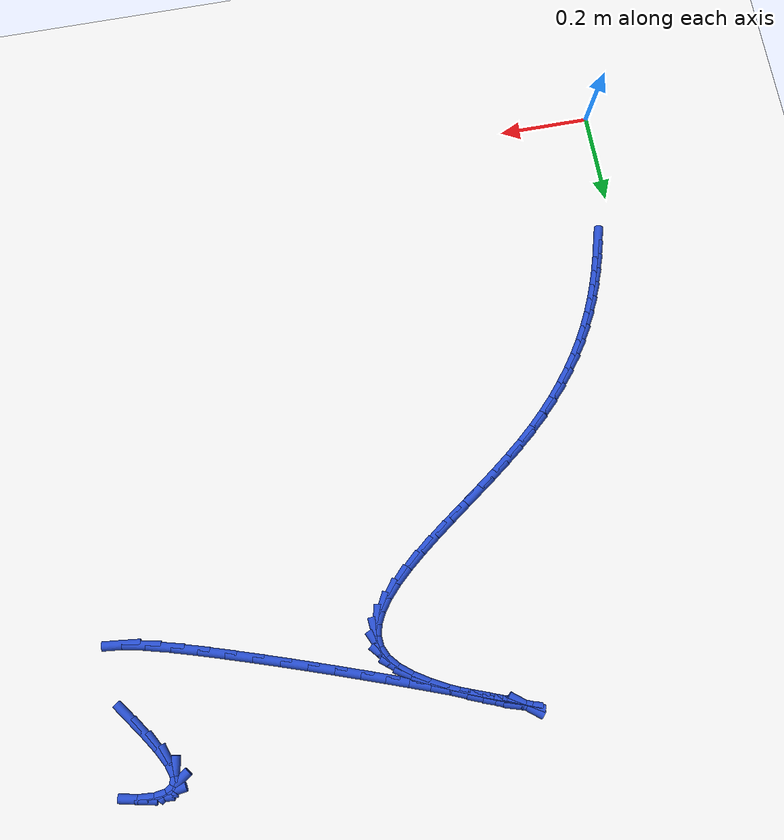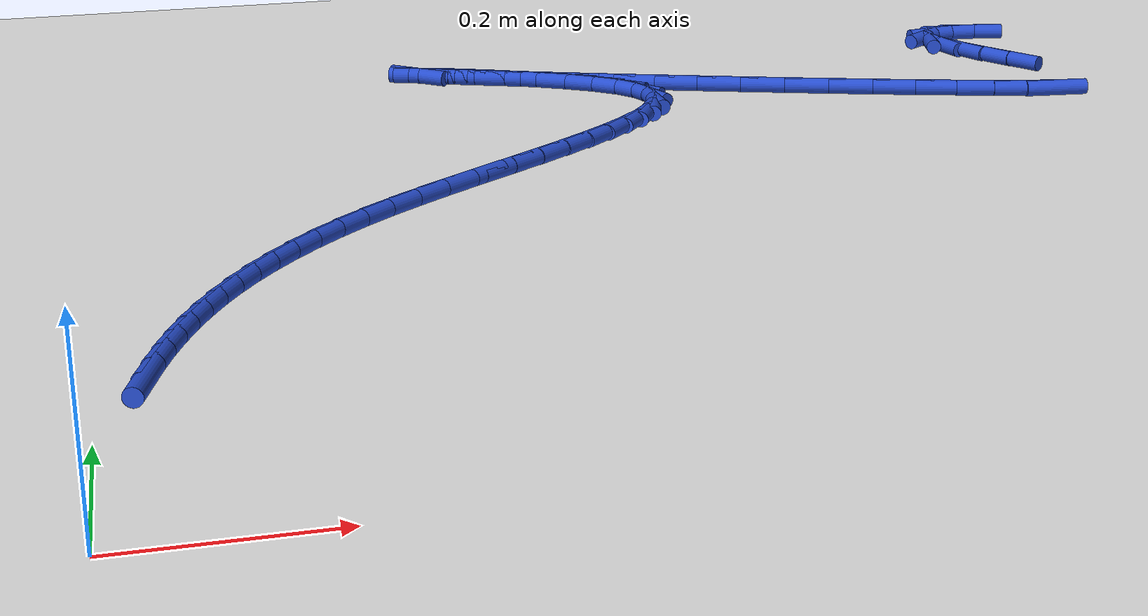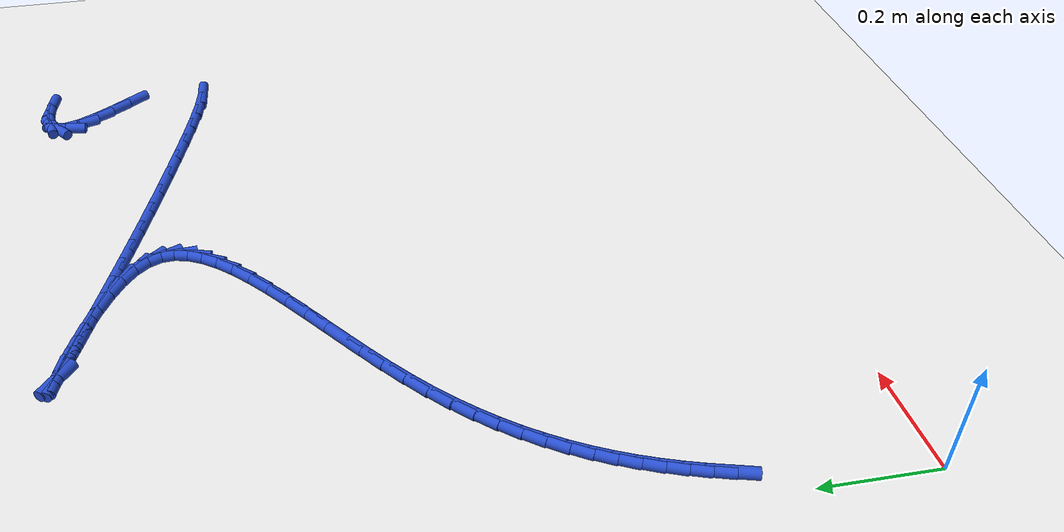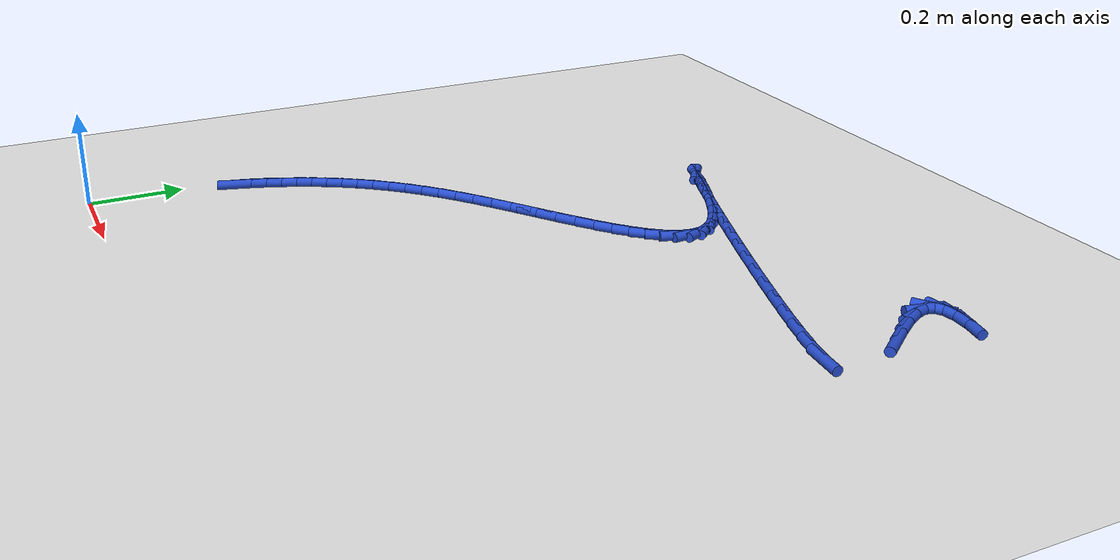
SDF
<sdf version="1.6">
 <world name="default">
  <model name="ground_plane">
   <static>1</static>
   <link name="link">
    <collision name="collision">
     <geometry><plane><normal>0 0 1</normal><size>100 100</size></plane></geometry>
     <surface><friction><ode><mu>100</mu><mu2>50</mu2></ode></friction></surface>
    </collision>
    <visual name="visual">
     <cast_shadows>0</cast_shadows>
     <geometry><plane><normal>0 0 1</normal><size>100 100</size></plane></geometry>
     <material>
      <script><uri>file://media/materials/scripts/gazebo.material</uri><name>Gazebo/WhiteGlow</name></script>
     </material>
    </visual>
   </link>
  </model>
  <model name="line">
   <link name="link_9">
    <pose>0.044872070949275145 0.3078805806410485 0.01 0 1.57 1.296328765569726</pose>
    <collision name="collision">
     <geometry><cylinder><radius>0.01</radius><length>0.08</length></cylinder></geometry>
    </collision>
    <visual name="visual">
     <material>
      <script><name>Gazebo/Blue</name><uri>file://media/materials/scripts/gazebo.material</uri></script>
     </material>
     <geometry><cylinder><radius>0.01</radius><length>0.08</length></cylinder></geometry>
    </visual>
   </link>
   <link name="link_10">
    <pose>0.053899946386491066 0.339942771726548 0.01 0 1.57 1.2630180009428806</pose>
    <collision name="collision">
     <geometry><cylinder><radius>0.01</radius><length>0.08</length></cylinder></geometry>
    </collision>
    <visual name="visual">
     <material>
      <script><name>Gazebo/Blue</name><uri>file://media/materials/scripts/gazebo.material</uri></script>
     </material>
     <geometry><cylinder><radius>0.01</radius><length>0.08</length></cylinder></geometry>
    </visual>
   </link>
   <link name="link_11">
    <pose>0.06395075674574952 0.3715610644514454 0.01 0 1.57 1.2261378673215297</pose>
    <collision name="collision">
     <geometry><cylinder><radius>0.01</radius><length>0.08</length></cylinder></geometry>
    </collision>
    <visual name="visual">
     <material>
      <script><name>Gazebo/Blue</name><uri>file://media/materials/scripts/gazebo.material</uri></script>
     </material>
     <geometry><cylinder><radius>0.01</radius><length>0.08</length></cylinder></geometry>
    </visual>
   </link>
   <link name="link_12">
    <pose>0.07515115308400772 0.40276107516043713 0.01 0 1.57 1.185996569558987</pose>
    <collision name="collision">
     <geometry><cylinder><radius>0.01</radius><length>0.08</length></cylinder></geometry>
    </collision>
    <visual name="visual">
     <material>
      <script><name>Gazebo/Blue</name><uri>file://media/materials/scripts/gazebo.material</uri></script>
     </material>
     <geometry><cylinder><radius>0.01</radius><length>0.08</length></cylinder></geometry>
    </visual>
   </link>
   <link name="link_13">
    <pose>0.08762778645822293 0.4335684201982204 0.01 0 1.57 1.142998102521094</pose>
    <collision name="collision">
     <geometry><cylinder><radius>0.01</radius><length>0.08</length></cylinder></geometry>
    </collision>
    <visual name="visual">
     <material>
      <script><name>Gazebo/Blue</name><uri>file://media/materials/scripts/gazebo.material</uri></script>
     </material>
     <geometry><cylinder><radius>0.01</radius><length>0.08</length></cylinder></geometry>
    </visual>
   </link>
   <link name="link_14">
    <pose>0.10150730792535245 0.464008715909492 0.01 0 1.57 1.0976358573032878</pose>
    <collision name="collision">
     <geometry><cylinder><radius>0.01</radius><length>0.08</length></cylinder></geometry>
    </collision>
    <visual name="visual">
     <material>
      <script><name>Gazebo/Blue</name><uri>file://media/materials/scripts/gazebo.material</uri></script>
     </material>
     <geometry><cylinder><radius>0.01</radius><length>0.08</length></cylinder></geometry>
    </visual>
   </link>
   <link name="link_15">
    <pose>0.11691636854235349 0.4941075786389486 0.01 0 1.57 1.0504773841870771</pose>
    <collision name="collision">
     <geometry><cylinder><radius>0.01</radius><length>0.08</length></cylinder></geometry>
    </collision>
    <visual name="visual">
     <material>
      <script><name>Gazebo/Blue</name><uri>file://media/materials/scripts/gazebo.material</uri></script>
     </material>
     <geometry><cylinder><radius>0.01</radius><length>0.08</length></cylinder></geometry>
    </visual>
   </link>
   <link name="link_16">
    <pose>0.13398161936618333 0.5238906247312872 0.01 0 1.57 1.0021407896355405</pose>
    <collision name="collision">
     <geometry><cylinder><radius>0.01</radius><length>0.08</length></cylinder></geometry>
    </collision>
    <visual name="visual">
     <material>
      <script><name>Gazebo/Blue</name><uri>file://media/materials/scripts/gazebo.material</uri></script>
     </material>
     <geometry><cylinder><radius>0.01</radius><length>0.08</length></cylinder></geometry>
    </visual>
   </link>
   <link name="link_17">
    <pose>0.15282971145379923 0.5533834705312044 0.01 0 1.57 0.9532649181700665</pose>
    <collision name="collision">
     <geometry><cylinder><radius>0.01</radius><length>0.08</length></cylinder></geometry>
    </collision>
    <visual name="visual">
     <material>
      <script><name>Gazebo/Blue</name><uri>file://media/materials/scripts/gazebo.material</uri></script>
     </material>
     <geometry><cylinder><radius>0.01</radius><length>0.08</length></cylinder></geometry>
    </visual>
   </link>
   <link name="link_18">
    <pose>0.17358729586215832 0.5826117323833971 0.01 0 1.57 0.9044768626946498</pose>
    <collision name="collision">
     <geometry><cylinder><radius>0.01</radius><length>0.08</length></cylinder></geometry>
    </collision>
    <visual name="visual">
     <material>
      <script><name>Gazebo/Blue</name><uri>file://media/materials/scripts/gazebo.material</uri></script>
     </material>
     <geometry><cylinder><radius>0.01</radius><length>0.08</length></cylinder></geometry>
    </visual>
   </link>
   <link name="link_19">
    <pose>0.19638102364821808 0.6116010266325624 0.01 0 1.57 0.8563609867290765</pose>
    <collision name="collision">
     <geometry><cylinder><radius>0.01</radius><length>0.08</length></cylinder></geometry>
    </collision>
    <visual name="visual">
     <material>
      <script><name>Gazebo/Blue</name><uri>file://media/materials/scripts/gazebo.material</uri></script>
     </material>
     <geometry><cylinder><radius>0.01</radius><length>0.08</length></cylinder></geometry>
    </visual>
   </link>
   <link name="link_20">
    <pose>0.22133754586893561 0.640376969623397 0.01 0 1.57 0.8094332972684989</pose>
    <collision name="collision">
     <geometry><cylinder><radius>0.01</radius><length>0.08</length></cylinder></geometry>
    </collision>
    <visual name="visual">
     <material>
      <script><name>Gazebo/Blue</name><uri>file://media/materials/scripts/gazebo.material</uri></script>
     </material>
     <geometry><cylinder><radius>0.01</radius><length>0.08</length></cylinder></geometry>
    </visual>
   </link>
   <link name="link_21">
    <pose>0.2485835135812682 0.6689651777005974 0.01 0 1.57 0.7641238036510345</pose>
    <collision name="collision">
     <geometry><cylinder><radius>0.01</radius><length>0.08</length></cylinder></geometry>
    </collision>
    <visual name="visual">
     <material>
      <script><name>Gazebo/Blue</name><uri>file://media/materials/scripts/gazebo.material</uri></script>
     </material>
     <geometry><cylinder><radius>0.01</radius><length>0.08</length></cylinder></geometry>
    </visual>
   </link>
   <link name="link_22">
    <pose>0.27824557784217324 0.6973912672088609 0.01 0 1.57 0.7207678551243164</pose>
    <collision name="collision">
     <geometry><cylinder><radius>0.01</radius><length>0.08</length></cylinder></geometry>
    </collision>
    <visual name="visual">
     <material>
      <script><name>Gazebo/Blue</name><uri>file://media/materials/scripts/gazebo.material</uri></script>
     </material>
     <geometry><cylinder><radius>0.01</radius><length>0.08</length></cylinder></geometry>
    </visual>
   </link>
   <link name="link_23">
    <pose>0.3104503897086077 0.725680854492884 0.01 0 1.57 0.6811791569323755</pose>
    <collision name="collision">
     <geometry><cylinder><radius>0.01</radius><length>0.08</length></cylinder></geometry>
    </collision>
    <visual name="visual">
     <material>
      <script><name>Gazebo/Blue</name><uri>file://media/materials/scripts/gazebo.material</uri></script>
     </material>
     <geometry><cylinder><radius>0.01</radius><length>0.08</length></cylinder></geometry>
    </visual>
   </link>
   <link name="link_24">
    <pose>0.3452029569986167 0.7538517541515303 0.01 0 1.57 0.6522928884079793</pose>
    <collision name="collision">
     <geometry><cylinder><radius>0.01</radius><length>0.08</length></cylinder></geometry>
    </collision>
    <visual name="visual">
     <material>
      <script><name>Gazebo/Blue</name><uri>file://media/materials/scripts/gazebo.material</uri></script>
     </material>
     <geometry><cylinder><radius>0.01</radius><length>0.08</length></cylinder></geometry>
    </visual>
   </link>
   <link name="link_25">
    <pose>0.38190108450779225 0.7818828370355952 0.01 0 1.57 0.6344573457232812</pose>
    <collision name="collision">
     <geometry><cylinder><radius>0.01</radius><length>0.08</length></cylinder></geometry>
    </collision>
    <visual name="visual">
     <material>
      <script><name>Gazebo/Blue</name><uri>file://media/materials/scripts/gazebo.material</uri></script>
     </material>
     <geometry><cylinder><radius>0.01</radius><length>0.08</length></cylinder></geometry>
    </visual>
   </link>
   <link name="link_26">
    <pose>0.4197534960639988 0.8097408470444268 0.01 0 1.57 0.6263735013264908</pose>
    <collision name="collision">
     <geometry><cylinder><radius>0.01</radius><length>0.08</length></cylinder></geometry>
    </collision>
    <visual name="visual">
     <material>
      <script><name>Gazebo/Blue</name><uri>file://media/materials/scripts/gazebo.material</uri></script>
     </material>
     <geometry><cylinder><radius>0.01</radius><length>0.08</length></cylinder></geometry>
    </visual>
   </link>
   <link name="link_27">
    <pose>0.4579688545080371 0.83739252416589 0.01 0 1.57 0.6275949090159018</pose>
    <collision name="collision">
     <geometry><cylinder><radius>0.01</radius><length>0.08</length></cylinder></geometry>
    </collision>
    <visual name="visual">
     <material>
      <script><name>Gazebo/Blue</name><uri>file://media/materials/scripts/gazebo.material</uri></script>
     </material>
     <geometry><cylinder><radius>0.01</radius><length>0.08</length></cylinder></geometry>
    </visual>
   </link>
   <link name="link_28">
    <pose>0.49575582268070717 0.8648046083878488 0.01 0 1.57 0.6384732017835405</pose>
    <collision name="collision">
     <geometry><cylinder><radius>0.01</radius><length>0.08</length></cylinder></geometry>
    </collision>
    <visual name="visual">
     <material>
      <script><name>Gazebo/Blue</name><uri>file://media/materials/scripts/gazebo.material</uri></script>
     </material>
     <geometry><cylinder><radius>0.01</radius><length>0.08</length></cylinder></geometry>
    </visual>
   </link>
   <link name="link_29">
    <pose>0.5323230634228094 0.8919438396981678 0.01 0 1.57 0.6602509918935555</pose>
    <collision name="collision">
     <geometry><cylinder><radius>0.01</radius><length>0.08</length></cylinder></geometry>
    </collision>
    <visual name="visual">
     <material>
      <script><name>Gazebo/Blue</name><uri>file://media/materials/scripts/gazebo.material</uri></script>
     </material>
     <geometry><cylinder><radius>0.01</radius><length>0.08</length></cylinder></geometry>
    </visual>
   </link>
   <link name="link_30">
    <pose>0.5668792395751441 0.9187769580847116 0.01 0 1.57 0.695337675064765</pose>
    <collision name="collision">
     <geometry><cylinder><radius>0.01</radius><length>0.08</length></cylinder></geometry>
    </collision>
    <visual name="visual">
     <material>
      <script><name>Gazebo/Blue</name><uri>file://media/materials/scripts/gazebo.material</uri></script>
     </material>
     <geometry><cylinder><radius>0.01</radius><length>0.08</length></cylinder></geometry>
    </visual>
   </link>
   <link name="link_31">
    <pose>0.5986330139785113 0.9452707035353441 0.01 0 1.57 0.7478535469513538</pose>
    <collision name="collision">
     <geometry><cylinder><radius>0.01</radius><length>0.08</length></cylinder></geometry>
    </collision>
    <visual name="visual">
     <material>
      <script><name>Gazebo/Blue</name><uri>file://media/materials/scripts/gazebo.material</uri></script>
     </material>
     <geometry><cylinder><radius>0.01</radius><length>0.08</length></cylinder></geometry>
    </visual>
   </link>
   <link name="link_32">
    <pose>0.6267930494737115 0.9713918160379302 0.01 0 1.57 0.8245830480036059</pose>
    <collision name="collision">
     <geometry><cylinder><radius>0.01</radius><length>0.08</length></cylinder></geometry>
    </collision>
    <visual name="visual">
     <material>
      <script><name>Gazebo/Blue</name><uri>file://media/materials/scripts/gazebo.material</uri></script>
     </material>
     <geometry><cylinder><radius>0.01</radius><length>0.08</length></cylinder></geometry>
    </visual>
   </link>
   <link name="link_33">
    <pose>0.6505680089015451 0.9971070355803344 0.01 0 1.57 0.9364346434123867</pose>
    <collision name="collision">
     <geometry><cylinder><radius>0.01</radius><length>0.08</length></cylinder></geometry>
    </collision>
    <visual name="visual">
     <material>
      <script><name>Gazebo/Blue</name><uri>file://media/materials/scripts/gazebo.material</uri></script>
     </material>
     <geometry><cylinder><radius>0.01</radius><length>0.08</length></cylinder></geometry>
    </visual>
   </link>
   <link name="link_34">
    <pose>0.6691665551028121 1.022383102150421 0.01 0 1.57 1.0997910098991046</pose>
    <collision name="collision">
     <geometry><cylinder><radius>0.01</radius><length>0.08</length></cylinder></geometry>
    </collision>
    <visual name="visual">
     <material>
      <script><name>Gazebo/Blue</name><uri>file://media/materials/scripts/gazebo.material</uri></script>
     </material>
     <geometry><cylinder><radius>0.01</radius><length>0.08</length></cylinder></geometry>
    </visual>
   </link>
   <link name="link_35">
    <pose>0.6817973509183131 1.0471867557360544 0.01 0 1.57 1.3336878575902162</pose>
    <collision name="collision">
     <geometry><cylinder><radius>0.01</radius><length>0.08</length></cylinder></geometry>
    </collision>
    <visual name="visual">
     <material>
      <script><name>Gazebo/Blue</name><uri>file://media/materials/scripts/gazebo.material</uri></script>
     </material>
     <geometry><cylinder><radius>0.01</radius><length>0.08</length></cylinder></geometry>
    </visual>
   </link>
   <link name="link_36">
    <pose>0.687669059188848 1.0714847363250992 0.01 0 1.57 -1.5002576724214727</pose>
    <collision name="collision">
     <geometry><cylinder><radius>0.01</radius><length>0.08</length></cylinder></geometry>
    </collision>
    <visual name="visual">
     <material>
      <script><name>Gazebo/Blue</name><uri>file://media/materials/scripts/gazebo.material</uri></script>
     </material>
     <geometry><cylinder><radius>0.01</radius><length>0.08</length></cylinder></geometry>
    </visual>
   </link>
   <link name="link_37">
    <pose>0.6859903427552174 1.0952437839054197 0.01 0 1.57 -1.1628750432676997</pose>
    <collision name="collision">
     <geometry><cylinder><radius>0.01</radius><length>0.08</length></cylinder></geometry>
    </collision>
    <visual name="visual">
     <material>
      <script><name>Gazebo/Blue</name><uri>file://media/materials/scripts/gazebo.material</uri></script>
     </material>
     <geometry><cylinder><radius>0.01</radius><length>0.08</length></cylinder></geometry>
    </visual>
   </link>
   <link name="link_38">
    <pose>0.6759698644582215 1.1184306384648806 0.01 0 1.57 -0.8698642629103456</pose>
    <collision name="collision">
     <geometry><cylinder><radius>0.01</radius><length>0.08</length></cylinder></geometry>
    </collision>
    <visual name="visual">
     <material>
      <script><name>Gazebo/Blue</name><uri>file://media/materials/scripts/gazebo.material</uri></script>
     </material>
     <geometry><cylinder><radius>0.01</radius><length>0.08</length></cylinder></geometry>
    </visual>
   </link>
   <link name="link_39">
    <pose>0.6569234554801319 1.1410006038826874 0.01 0 1.57 -0.6767150941291953</pose>
    <collision name="collision">
     <geometry><cylinder><radius>0.01</radius><length>0.08</length></cylinder></geometry>
    </collision>
    <visual name="visual">
     <material>
      <script><name>Gazebo/Blue</name><uri>file://media/materials/scripts/gazebo.material</uri></script>
     </material>
     <geometry><cylinder><radius>0.01</radius><length>0.08</length></cylinder></geometry>
    </visual>
   </link>
   <link name="link_40">
    <pose>0.6298755230438031 1.1627266590997027 0.01 0 1.57 -0.5608009420195447</pose>
    <collision name="collision">
     <geometry><cylinder><radius>0.01</radius><length>0.08</length></cylinder></geometry>
    </collision>
    <visual name="visual">
     <material>
      <script><name>Gazebo/Blue</name><uri>file://media/materials/scripts/gazebo.material</uri></script>
     </material>
     <geometry><cylinder><radius>0.01</radius><length>0.08</length></cylinder></geometry>
    </visual>
   </link>
   <link name="link_41">
    <pose>0.597221610318199 1.1832354669017593 0.01 0 1.57 -0.48575509200364586</pose>
    <collision name="collision">
     <geometry><cylinder><radius>0.01</radius><length>0.08</length></cylinder></geometry>
    </collision>
    <visual name="visual">
     <material>
      <script><name>Gazebo/Blue</name><uri>file://media/materials/scripts/gazebo.material</uri></script>
     </material>
     <geometry><cylinder><radius>0.01</radius><length>0.08</length></cylinder></geometry>
    </visual>
   </link>
   <link name="link_42">
    <pose>0.5613959150001723 1.202149565186918 0.01 0 1.57 -0.43390760819317675</pose>
    <collision name="collision">
     <geometry><cylinder><radius>0.01</radius><length>0.08</length></cylinder></geometry>
    </collision>
    <visual name="visual">
     <material>
      <script><name>Gazebo/Blue</name><uri>file://media/materials/scripts/gazebo.material</uri></script>
     </material>
     <geometry><cylinder><radius>0.01</radius><length>0.08</length></cylinder></geometry>
    </visual>
   </link>
   <link name="link_43">
    <pose>0.5248326347865754 1.2190914918532414 0.01 0 1.57 -0.396366696308613</pose>
    <collision name="collision">
     <geometry><cylinder><radius>0.01</radius><length>0.08</length></cylinder></geometry>
    </collision>
    <visual name="visual">
     <material>
      <script><name>Gazebo/Blue</name><uri>file://media/materials/scripts/gazebo.material</uri></script>
     </material>
     <geometry><cylinder><radius>0.01</radius><length>0.08</length></cylinder></geometry>
    </visual>
   </link>
   <link name="link_44">
    <pose>0.48996596737426173 1.2336837847987914 0.01 0 1.57 -0.3684122027156938</pose>
    <collision name="collision">
     <geometry><cylinder><radius>0.01</radius><length>0.08</length></cylinder></geometry>
    </collision>
    <visual name="visual">
     <material>
      <script><name>Gazebo/Blue</name><uri>file://media/materials/scripts/gazebo.material</uri></script>
     </material>
     <geometry><cylinder><radius>0.01</radius><length>0.08</length></cylinder></geometry>
    </visual>
   </link>
   <link name="link_45">
    <pose>0.459230110460084 1.2455489819216297 0.01 0 1.57 -0.3477196889810161</pose>
    <collision name="collision">
     <geometry><cylinder><radius>0.01</radius><length>0.08</length></cylinder></geometry>
    </collision>
    <visual name="visual">
     <material>
      <script><name>Gazebo/Blue</name><uri>file://media/materials/scripts/gazebo.material</uri></script>
     </material>
     <geometry><cylinder><radius>0.01</radius><length>0.08</length></cylinder></geometry>
    </visual>
   </link>
   <link name="link_46">
    <pose>0.43505926174089526 1.254309621119818 0.01 0 1.57 -0.3317245176585386</pose>
    <collision name="collision">
     <geometry><cylinder><radius>0.01</radius><length>0.08</length></cylinder></geometry>
    </collision>
    <visual name="visual">
     <material>
      <script><name>Gazebo/Blue</name><uri>file://media/materials/scripts/gazebo.material</uri></script>
     </material>
     <geometry><cylinder><radius>0.01</radius><length>0.08</length></cylinder></geometry>
    </visual>
   </link>
   <link name="link_47">
    <pose>0.4195041189200679 1.2596676344279971 0.01 0 1.57 -0.2922968607897403</pose>
    <collision name="collision">
     <geometry><cylinder><radius>0.01</radius><length>0.08</length></cylinder></geometry>
    </collision>
    <visual name="visual">
     <material>
      <script><name>Gazebo/Blue</name><uri>file://media/materials/scripts/gazebo.material</uri></script>
     </material>
     <geometry><cylinder><radius>0.01</radius><length>0.08</length></cylinder></geometry>
    </visual>
   </link>
   <link name="link_48">
    <pose>0.41263201039878766 1.2617355611713998 0.01 0 1.57 -0.6678579510635081</pose>
    <collision name="collision">
     <geometry><cylinder><radius>0.01</radius><length>0.08</length></cylinder></geometry>
    </collision>
    <visual name="visual">
     <material>
      <script><name>Gazebo/Blue</name><uri>file://media/materials/scripts/gazebo.material</uri></script>
     </material>
     <geometry><cylinder><radius>0.01</radius><length>0.08</length></cylinder></geometry>
    </visual>
   </link>
   <link name="link_49">
    <pose>0.41387099046970427 1.260758286481638 0.01 0 1.57 -0.4063929415647524</pose>
    <collision name="collision">
     <geometry><cylinder><radius>0.01</radius><length>0.08</length></cylinder></geometry>
    </collision>
    <visual name="visual">
     <material>
      <script><name>Gazebo/Blue</name><uri>file://media/materials/scripts/gazebo.material</uri></script>
     </material>
     <geometry><cylinder><radius>0.01</radius><length>0.08</length></cylinder></geometry>
    </visual>
   </link>
   <link name="link_50">
    <pose>0.42264880263206767 1.2569807598323701 0.01 0 1.57 -0.38242534598650335</pose>
    <collision name="collision">
     <geometry><cylinder><radius>0.01</radius><length>0.08</length></cylinder></geometry>
    </collision>
    <visual name="visual">
     <material>
      <script><name>Gazebo/Blue</name><uri>file://media/materials/scripts/gazebo.material</uri></script>
     </material>
     <geometry><cylinder><radius>0.01</radius><length>0.08</length></cylinder></geometry>
    </visual>
   </link>
   <link name="link_51">
    <pose>0.4383931903851278 1.2506479306972547 0.01 0 1.57 -0.3722122729546029</pose>
    <collision name="collision">
     <geometry><cylinder><radius>0.01</radius><length>0.08</length></cylinder></geometry>
    </collision>
    <visual name="visual">
     <material>
      <script><name>Gazebo/Blue</name><uri>file://media/materials/scripts/gazebo.material</uri></script>
     </material>
     <geometry><cylinder><radius>0.01</radius><length>0.08</length></cylinder></geometry>
    </visual>
   </link>
   <link name="link_52">
    <pose>0.4605318972281346 1.2420047485499477 0.01 0 1.57 -0.36575372331158235</pose>
    <collision name="collision">
     <geometry><cylinder><radius>0.01</radius><length>0.08</length></cylinder></geometry>
    </collision>
    <visual name="visual">
     <material>
      <script><name>Gazebo/Blue</name><uri>file://media/materials/scripts/gazebo.material</uri></script>
     </material>
     <geometry><cylinder><radius>0.01</radius><length>0.08</length></cylinder></geometry>
    </visual>
   </link>
   <link name="link_53">
    <pose>0.48849266666033836 1.231296162864109 0.01 0 1.57 -0.36075104170725936</pose>
    <collision name="collision">
     <geometry><cylinder><radius>0.01</radius><length>0.08</length></cylinder></geometry>
    </collision>
    <visual name="visual">
     <material>
      <script><name>Gazebo/Blue</name><uri>file://media/materials/scripts/gazebo.material</uri></script>
     </material>
     <geometry><cylinder><radius>0.01</radius><length>0.08</length></cylinder></geometry>
    </visual>
   </link>
   <link name="link_54">
    <pose>0.5217032421809886 1.2187671231133954 0.01 0 1.57 -0.35637352396076943</pose>
    <collision name="collision">
     <geometry><cylinder><radius>0.01</radius><length>0.08</length></cylinder></geometry>
    </collision>
    <visual name="visual">
     <material>
      <script><name>Gazebo/Blue</name><uri>file://media/materials/scripts/gazebo.material</uri></script>
     </material>
     <geometry><cylinder><radius>0.01</radius><length>0.08</length></cylinder></geometry>
    </visual>
   </link>
   <link name="link_55">
    <pose>0.5595913672893355 1.2046625787714647 0.01 0 1.57 -0.35223200185662357</pose>
    <collision name="collision">
     <geometry><cylinder><radius>0.01</radius><length>0.08</length></cylinder></geometry>
    </collision>
    <visual name="visual">
     <material>
      <script><name>Gazebo/Blue</name><uri>file://media/materials/scripts/gazebo.material</uri></script>
     </material>
     <geometry><cylinder><radius>0.01</radius><length>0.08</length></cylinder></geometry>
    </visual>
   </link>
   <link name="link_56">
    <pose>0.6015847854846289 1.1892274793119748 0.01 0 1.57 -0.3481040775110137</pose>
    <collision name="collision">
     <geometry><cylinder><radius>0.01</radius><length>0.08</length></cylinder></geometry>
    </collision>
    <visual name="visual">
     <material>
      <script><name>Gazebo/Blue</name><uri>file://media/materials/scripts/gazebo.material</uri></script>
     </material>
     <geometry><cylinder><radius>0.01</radius><length>0.08</length></cylinder></geometry>
    </visual>
   </link>
   <link name="link_57">
    <pose>0.6471112402661185 1.172706774208584 0.01 0 1.57 -0.34383749907045763</pose>
    <collision name="collision">
     <geometry><cylinder><radius>0.01</radius><length>0.08</length></cylinder></geometry>
    </collision>
    <visual name="visual">
     <material>
      <script><name>Gazebo/Blue</name><uri>file://media/materials/scripts/gazebo.material</uri></script>
     </material>
     <geometry><cylinder><radius>0.01</radius><length>0.08</length></cylinder></geometry>
    </visual>
   </link>
   <link name="link_58">
    <pose>0.6955984751330551 1.1553454129349492 0.01 0 1.57 -0.339308658354717</pose>
    <collision name="collision">
     <geometry><cylinder><radius>0.01</radius><length>0.08</length></cylinder></geometry>
    </collision>
    <visual name="visual">
     <material>
      <script><name>Gazebo/Blue</name><uri>file://media/materials/scripts/gazebo.material</uri></script>
     </material>
     <geometry><cylinder><radius>0.01</radius><length>0.08</length></cylinder></geometry>
    </visual>
   </link>
   <link name="link_59">
    <pose>0.7464742335846878 1.1373883449647288 0.01 0 1.57 -0.3344009776181328</pose>
    <collision name="collision">
     <geometry><cylinder><radius>0.01</radius><length>0.08</length></cylinder></geometry>
    </collision>
    <visual name="visual">
     <material>
      <script><name>Gazebo/Blue</name><uri>file://media/materials/scripts/gazebo.material</uri></script>
     </material>
     <geometry><cylinder><radius>0.01</radius><length>0.08</length></cylinder></geometry>
    </visual>
   </link>
   <link name="link_60">
    <pose>0.799166259120267 1.1190805197715805 0.01 0 1.57 -0.3289907458326644</pose>
    <collision name="collision">
     <geometry><cylinder><radius>0.01</radius><length>0.08</length></cylinder></geometry>
    </collision>
    <visual name="visual">
     <material>
      <script><name>Gazebo/Blue</name><uri>file://media/materials/scripts/gazebo.material</uri></script>
     </material>
     <geometry><cylinder><radius>0.01</radius><length>0.08</length></cylinder></geometry>
    </visual>
   </link>
   <link name="link_61">
    <pose>0.8531022952390424 1.1006668868291625 0.01 0 1.57 -0.32293499088508726</pose>
    <collision name="collision">
     <geometry><cylinder><radius>0.01</radius><length>0.08</length></cylinder></geometry>
    </collision>
    <visual name="visual">
     <material>
      <script><name>Gazebo/Blue</name><uri>file://media/materials/scripts/gazebo.material</uri></script>
     </material>
     <geometry><cylinder><radius>0.01</radius><length>0.08</length></cylinder></geometry>
    </visual>
   </link>
   <link name="link_62">
    <pose>0.907710085440264 1.082392395611132 0.01 0 1.57 -0.3160582097542931</pose>
    <collision name="collision">
     <geometry><cylinder><radius>0.01</radius><length>0.08</length></cylinder></geometry>
    </collision>
    <visual name="visual">
     <material>
      <script><name>Gazebo/Blue</name><uri>file://media/materials/scripts/gazebo.material</uri></script>
     </material>
     <geometry><cylinder><radius>0.01</radius><length>0.08</length></cylinder></geometry>
    </visual>
   </link>
   <link name="link_63">
    <pose>0.9624173732231818 1.0645019955911472 0.01 0 1.57 -0.3081351284425896</pose>
    <collision name="collision">
     <geometry><cylinder><radius>0.01</radius><length>0.08</length></cylinder></geometry>
    </collision>
    <visual name="visual">
     <material>
      <script><name>Gazebo/Blue</name><uri>file://media/materials/scripts/gazebo.material</uri></script>
     </material>
     <geometry><cylinder><radius>0.01</radius><length>0.08</length></cylinder></geometry>
    </visual>
   </link>
   <link name="link_64">
    <pose>1.0166519020870464 1.0472406362428661 0.01 0 1.57 -0.2984270535751047</pose>
    <collision name="collision">
     <geometry><cylinder><radius>0.01</radius><length>0.08</length></cylinder></geometry>
    </collision>
    <visual name="visual">
     <material>
      <script><name>Gazebo/Blue</name><uri>file://media/materials/scripts/gazebo.material</uri></script>
     </material>
     <geometry><cylinder><radius>0.01</radius><length>0.08</length></cylinder></geometry>
    </visual>
   </link>
   <link name="link_65">
    <pose>1.0697830100828394 1.0308967834375007 0.01 0 1.57 -0.28144936340705784</pose>
    <collision name="collision">
     <geometry><cylinder><radius>0.01</radius><length>0.08</length></cylinder></geometry>
    </collision>
    <visual name="visual">
     <material>
      <script><name>Gazebo/Blue</name><uri>file://media/materials/scripts/gazebo.material</uri></script>
     </material>
     <geometry><cylinder><radius>0.01</radius><length>0.08</length></cylinder></geometry>
    </visual>
   </link>
   <link name="link_66">
    <pose>1.1205708519639876 1.016212789855565 0.01 0 1.57 -0.25102254118136236</pose>
    <collision name="collision">
     <geometry><cylinder><radius>0.01</radius><length>0.08</length></cylinder></geometry>
    </collision>
    <visual name="visual">
     <material>
      <script><name>Gazebo/Blue</name><uri>file://media/materials/scripts/gazebo.material</uri></script>
     </material>
     <geometry><cylinder><radius>0.01</radius><length>0.08</length></cylinder></geometry>
    </visual>
   </link>
   <link name="link_67">
    <pose>1.167413342940709 1.004200903545897 0.01 0 1.57 -0.19892988345280127</pose>
    <collision name="collision">
     <geometry><cylinder><radius>0.01</radius><length>0.08</length></cylinder></geometry>
    </collision>
    <visual name="visual">
     <material>
      <script><name>Gazebo/Blue</name><uri>file://media/materials/scripts/gazebo.material</uri></script>
     </material>
     <geometry><cylinder><radius>0.01</radius><length>0.08</length></cylinder></geometry>
    </visual>
   </link>
   <link name="link_68">
    <pose>1.208703604513323 0.9958769442273038 0.01 0 1.57 -0.10567258671338062</pose>
    <collision name="collision">
     <geometry><cylinder><radius>0.01</radius><length>0.08</length></cylinder></geometry>
    </collision>
    <visual name="visual">
     <material>
      <script><name>Gazebo/Blue</name><uri>file://media/materials/scripts/gazebo.material</uri></script>
     </material>
     <geometry><cylinder><radius>0.01</radius><length>0.08</length></cylinder></geometry>
    </visual>
   </link>
   <link name="link_76">
    <pose>1.2106126912494641 1.1436349586571826 0.01 0 1.57 -0.9448345679642438</pose>
    <collision name="collision">
     <geometry><cylinder><radius>0.01</radius><length>0.08</length></cylinder></geometry>
    </collision>
    <visual name="visual">
     <material>
      <script><name>Gazebo/Blue</name><uri>file://media/materials/scripts/gazebo.material</uri></script>
     </material>
     <geometry><cylinder><radius>0.01</radius><length>0.08</length></cylinder></geometry>
    </visual>
   </link>
   <link name="link_77">
    <pose>1.184434275120986 1.1798456149965397 0.01 0 1.57 -0.9812903925892403</pose>
    <collision name="collision">
     <geometry><cylinder><radius>0.01</radius><length>0.08</length></cylinder></geometry>
    </collision>
    <visual name="visual">
     <material>
      <script><name>Gazebo/Blue</name><uri>file://media/materials/scripts/gazebo.material</uri></script>
     </material>
     <geometry><cylinder><radius>0.01</radius><length>0.08</length></cylinder></geometry>
    </visual>
   </link>
   <link name="link_78">
    <pose>1.1612975630111624 1.2144378954939588 0.01 0 1.57 -1.0678060792246804</pose>
    <collision name="collision">
     <geometry><cylinder><radius>0.01</radius><length>0.08</length></cylinder></geometry>
    </collision>
    <visual name="visual">
     <material>
      <script><name>Gazebo/Blue</name><uri>file://media/materials/scripts/gazebo.material</uri></script>
     </material>
     <geometry><cylinder><radius>0.01</radius><length>0.08</length></cylinder></geometry>
    </visual>
   </link>
   <link name="link_79">
    <pose>1.1441773417392178 1.2455547344784277 0.01 0 1.57 -1.2653928099964131</pose>
    <collision name="collision">
     <geometry><cylinder><radius>0.01</radius><length>0.08</length></cylinder></geometry>
    </collision>
    <visual name="visual">
     <material>
      <script><name>Gazebo/Blue</name><uri>file://media/materials/scripts/gazebo.material</uri></script>
     </material>
     <geometry><cylinder><radius>0.01</radius><length>0.08</length></cylinder></geometry>
    </visual>
   </link>
   <link name="link_80">
    <pose>1.1360483981243752 1.2713390662789321 0.01 0 1.57 1.37716799815777</pose>
    <collision name="collision">
     <geometry><cylinder><radius>0.01</radius><length>0.08</length></cylinder></geometry>
    </collision>
    <visual name="visual">
     <material>
      <script><name>Gazebo/Blue</name><uri>file://media/materials/scripts/gazebo.material</uri></script>
     </material>
     <geometry><cylinder><radius>0.01</radius><length>0.08</length></cylinder></geometry>
    </visual>
   </link>
   <link name="link_81">
    <pose>1.1397109838886 1.290017626920444 0.01 0 1.57 0.6181228287351811</pose>
    <collision name="collision">
     <geometry><cylinder><radius>0.01</radius><length>0.08</length></cylinder></geometry>
    </collision>
    <visual name="visual">
     <material>
      <script><name>Gazebo/Blue</name><uri>file://media/materials/scripts/gazebo.material</uri></script>
     </material>
     <geometry><cylinder><radius>0.01</radius><length>0.08</length></cylinder></geometry>
    </visual>
   </link>
   <link name="link_82">
    <pose>1.1552951755453873 1.3010992166920987 0.01 0 1.57 0.1551024248023627</pose>
    <collision name="collision">
     <geometry><cylinder><radius>0.01</radius><length>0.08</length></cylinder></geometry>
    </collision>
    <visual name="visual">
     <material>
      <script><name>Gazebo/Blue</name><uri>file://media/materials/scripts/gazebo.material</uri></script>
     </material>
     <geometry><cylinder><radius>0.01</radius><length>0.08</length></cylinder></geometry>
    </visual>
   </link>
   <link name="link_83">
    <pose>1.1808451473439452 1.3050941659485933 0.01 0 1.57 -0.07610344746957798</pose>
    <collision name="collision">
     <geometry><cylinder><radius>0.01</radius><length>0.08</length></cylinder></geometry>
    </collision>
    <visual name="visual">
     <material>
      <script><name>Gazebo/Blue</name><uri>file://media/materials/scripts/gazebo.material</uri></script>
     </material>
     <geometry><cylinder><radius>0.01</radius><length>0.08</length></cylinder></geometry>
    </visual>
   </link>
   <link name="link_84">
    <pose>1.2143496313711684 1.3025394251760682 0.01 0 1.57 -0.2138642962851031</pose>
    <collision name="collision">
     <geometry><cylinder><radius>0.01</radius><length>0.08</length></cylinder></geometry>
    </collision>
    <visual name="visual">
     <material>
      <script><name>Gazebo/Blue</name><uri>file://media/materials/scripts/gazebo.material</uri></script>
     </material>
     <geometry><cylinder><radius>0.01</radius><length>0.08</length></cylinder></geometry>
    </visual>
   </link>
  </model>
 </world>
</sdf>
